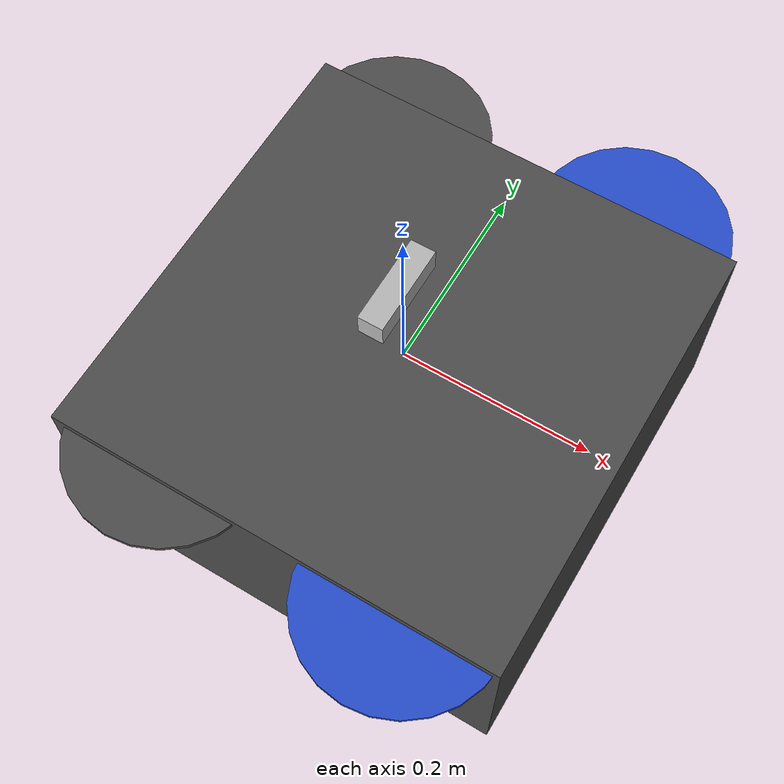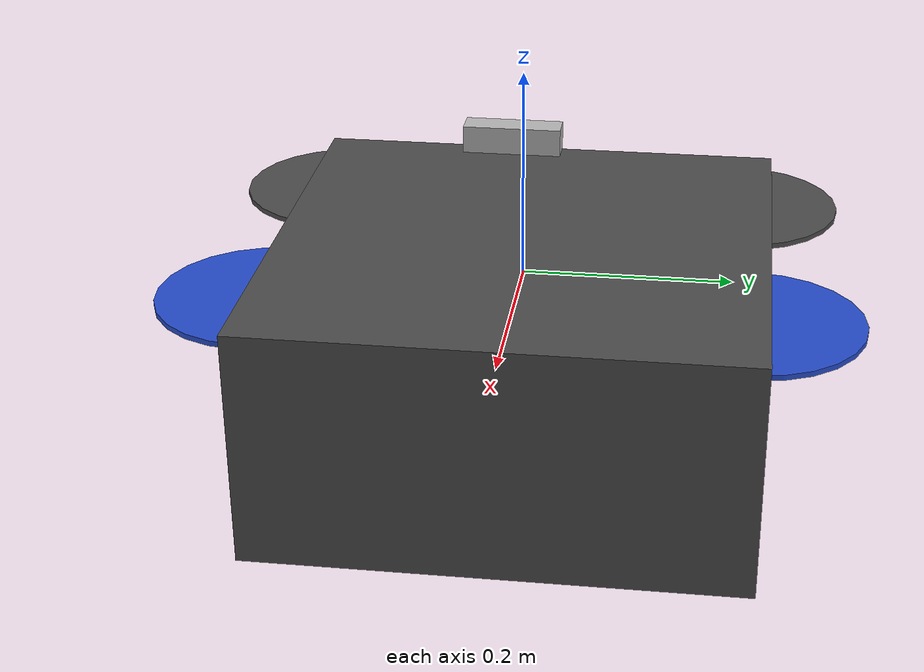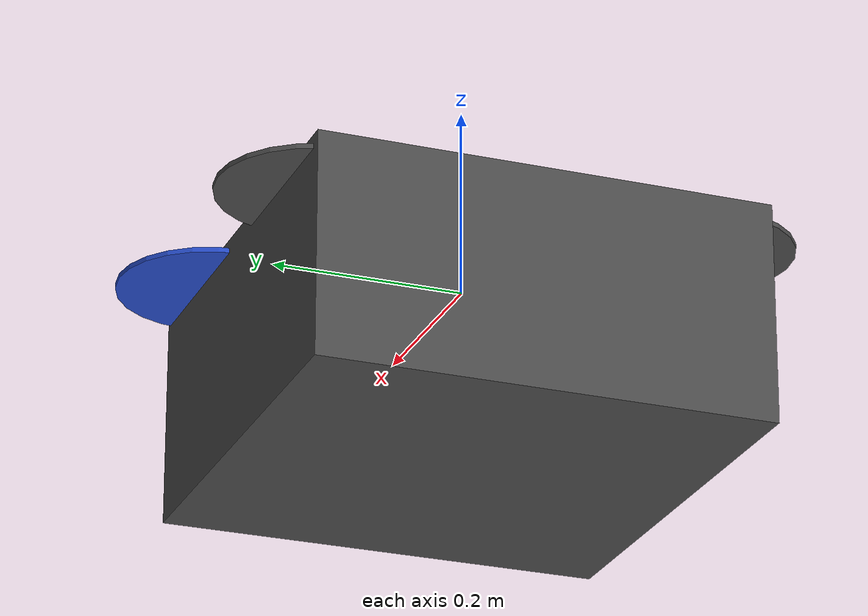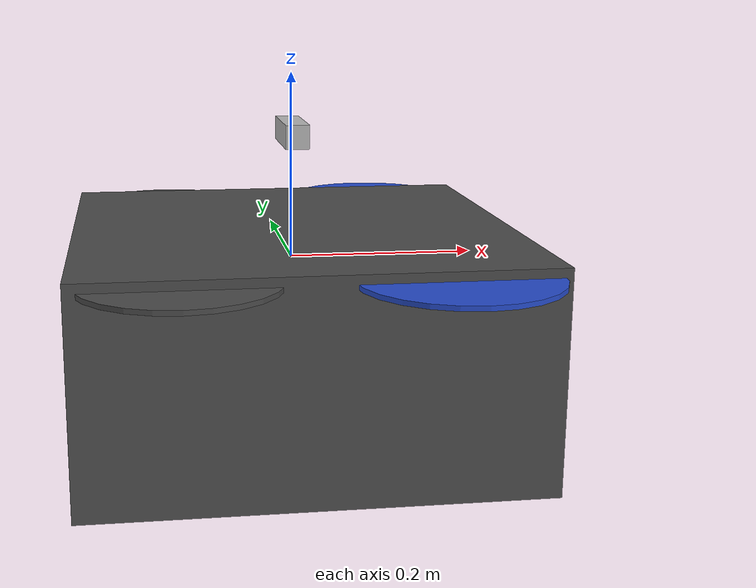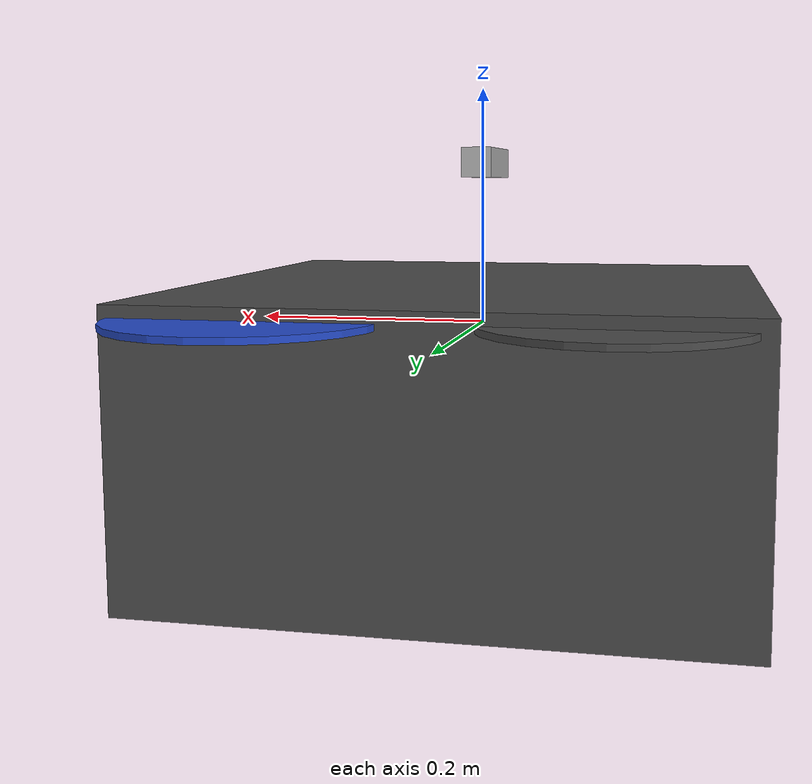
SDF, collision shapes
<?xml version='1.0'?>
<sdf version='1.6'>
  <model name='iris_with_rs'>

    <include>
      <uri>model://realsense_model</uri>
      <pose>0 -0.01 0.125 0 0 0</pose>
    </include>

    <joint name="realsense_joint" type="revolute">
      <parent>base_link</parent>
      <child>realsense2_camera::base_link</child>
      <axis>
        <limit>
          <lower>0</lower>
          <upper>0</upper>
        </limit>
        <xyz>0 0 1</xyz>
        <use_parent_model_frame>true</use_parent_model_frame>
      </axis>
    </joint>

	  <link name='base_link'>
		  <pose> 0 0 0 0 0 0 </pose>
      <velocity_decay>
        <linear>0.0</linear>
        <angular>0.0</angular>
      </velocity_decay>
      <inertial>
	      <pose>0 0 0 0 0 0</pose>
        <mass>1.5</mass>
        <inertia>
          <ixx>0.008</ixx>
          <ixy>0</ixy>
          <ixz>0</ixz>
          <iyy>0.015</iyy>
          <iyz>0</iyz>
          <izz>0.017</izz>
        </inertia>
      </inertial>
      <collision name='base_link_collision'>
        <pose>0 0 -0.08 0 0 0</pose>
        <geometry>
          <box>
            <size>0.47 0.47 0.23</size>
          </box>
        </geometry>
        <surface>
          <contact>
            <ode>
              <max_vel>100.0</max_vel>
              <min_depth>0.001</min_depth>
            </ode>
          </contact>
          <friction>
            <ode>
              <mu>1.0</mu>
              <mu2>1.0</mu2>
            </ode>
          </friction>
        </surface>
      </collision>
      <visual name='base_link_visual'>
        <geometry>
          <mesh>
            <uri>model://iris_with_rs/meshes/iris.dae</uri>
          </mesh>
        </geometry>
        <material>
          <script>
            <name>Gazebo/DarkGrey</name>
            <uri>__default__</uri>
          </script>
        </material>
      </visual>

      <visual name='front_left_leg_visual'>
        <pose>0.123 0.22 -0.11 0 0 0</pose>
        <geometry>
          <cylinder>
            <radius>0.005</radius>
            <length>0.17</length>
          </cylinder>
        </geometry>
        <material>
          <script>
            <name>Gazebo/FlatBlack</name>
            <uri>file://media/materials/scripts/gazebo.material</uri>
          </script>
        </material>
      </visual>
      <visual name='front_right_leg_visual'>
        <pose>0.123 -0.22 -0.11 0 0 0</pose>
        <geometry>
          <cylinder>
            <radius>0.005</radius>
            <length>0.17</length>
          </cylinder>
        </geometry>
        <material>
          <script>
            <name>Gazebo/FlatBlack</name>
            <uri>file://media/materials/scripts/gazebo.material</uri>
          </script>
        </material>
      </visual>
      <visual name='rear_left_leg_visual'>
        <pose>-0.140 0.21 -0.11 0 0 0</pose>
        <geometry>
          <cylinder>
            <radius>0.005</radius>
            <length>0.17</length>
          </cylinder>
        </geometry>
        <material>
          <script>
            <name>Gazebo/FlatBlack</name>
            <uri>file://media/materials/scripts/gazebo.material</uri>
          </script>
        </material>
      </visual>
      <visual name='rear_right_leg_visual'>
        <pose>-0.140 -0.21 -0.11 0 0 0</pose>
        <geometry>
          <cylinder>
            <radius>0.005</radius>
            <length>0.17</length>
          </cylinder>
        </geometry>
        <material>
          <script>
            <name>Gazebo/FlatBlack</name>
            <uri>file://media/materials/scripts/gazebo.material</uri>
          </script>
        </material>
      </visual>
    </link>
    <link name='iris_with_rs/ground_truth/odometry_sensorgt_link'>
      <pose>0 0 0 0 -0 0</pose>
      <inertial>
        <pose>0 0 0 0 -0 0</pose>
        <mass>0.15</mass>
        <inertia>
          <ixx>0.0001</ixx>
          <ixy>0</ixy>
          <ixz>0</ixz>
          <iyy>0.0002</iyy>
          <iyz>0</iyz>
          <izz>0.0002</izz>
        </inertia>
      </inertial>
    </link>
    <joint name='iris_with_rs/ground_truth/odometry_sensorgt_joint' type='revolute'>
      <child>iris_with_rs/ground_truth/odometry_sensorgt_link</child>
      <parent>base_link</parent>
      <axis>
        <xyz>0 0 1</xyz>
        <limit>
          <lower>0</lower>
          <upper>0</upper>
          <effort>0</effort>
          <velocity>0</velocity>
        </limit>
        <dynamics>
          <damping>1.0</damping>
        </dynamics>
        <use_parent_model_frame>1</use_parent_model_frame>
      </axis>
      <physics>
        <ode>
          <implicit_spring_damper>1</implicit_spring_damper>
        </ode>
      </physics>
    </joint>
    <link name='iris_with_rs/imu_link'>
      <inertial>
        <pose>0 0 0 0 0 0</pose>
        <mass>0.15</mass>
        <inertia>
          <ixx>0.00001</ixx>
          <ixy>0</ixy>
          <ixz>0</ixz>
          <iyy>0.00002</iyy>
          <iyz>0</iyz>
          <izz>0.00002</izz>
        </inertia>
      </inertial>
      <sensor name="imu_sensor" type="imu">
        <pose>0 0 0 3.141593 0 0</pose>
        <always_on>1</always_on>
        <update_rate>1000.0</update_rate>
      </sensor>
    </link>
    <joint name='iris_with_rs/imu_joint' type='revolute'>
      <child>iris_with_rs/imu_link</child>
      <parent>base_link</parent>
      <axis>
        <xyz>0 0 1</xyz>
        <limit>
          <lower>0</lower>
          <upper>0</upper>
          <effort>0</effort>
          <velocity>0</velocity>
        </limit>
        <dynamics>
          <damping>1.0</damping>
        </dynamics>
        <use_parent_model_frame>1</use_parent_model_frame>
      </axis>
      <physics>
        <ode>
          <implicit_spring_damper>1</implicit_spring_damper>
        </ode>
      </physics>
    </joint>
    <link name='rotor_0'>
      <pose>0.13 -0.22 0.023 0 -0 0</pose>
      <inertial>
        <pose>0 0 0 0 -0 0</pose>
        <mass>0.025</mass>
        <inertia>
          <ixx>9.75e-06</ixx>
          <ixy>0</ixy>
          <ixz>0</ixz>
          <iyy>0.000166704</iyy>
          <iyz>0</iyz>
          <izz>0.000167604</izz>
        </inertia>
      </inertial>
      <collision name='rotor_0_collision'>
        <pose>0 0 0 0 -0 0</pose>
        <geometry>
          <cylinder>
            <length>0.005</length>
            <radius>0.1</radius>
          </cylinder>
        </geometry>
        <surface>
          <contact>
            <ode/>
          </contact>
          <friction>
            <ode/>
          </friction>
        </surface>
      </collision>
      <visual name='rotor_0_visual'>
        <pose>0 0 0 0 -0 0</pose>
        <geometry>
          <mesh>
            <scale>1 1 1</scale>
            <uri>model://iris_with_rs/meshes/iris_prop_ccw.dae</uri>
          </mesh>
        </geometry>
        <material>
          <script>
            <name>Gazebo/Blue</name>
            <uri>__default__</uri>
          </script>
        </material>
      </visual>
      <gravity>1</gravity>
      <velocity_decay/>
      <self_collide>0</self_collide>
    </link>
    <joint name='rotor_0_joint' type='revolute'>
      <child>rotor_0</child>
      <parent>base_link</parent>
      <axis>
        <xyz>0 0 1</xyz>
        <limit>
          <lower>-1e+16</lower>
          <upper>1e+16</upper>
        </limit>
        <dynamics>
          <damping>0.004</damping>
        </dynamics>
        <use_parent_model_frame>1</use_parent_model_frame>
      </axis>
      <physics>
        <ode>
          <implicit_spring_damper>1</implicit_spring_damper>
        </ode>
      </physics>
    </joint>
    <link name='rotor_1'>
      <pose>-0.13 0.2 0.023 0 -0 0</pose>
      <inertial>
        <pose>0 0 0 0 -0 0</pose>
        <mass>0.025</mass>
        <inertia>
          <ixx>9.75e-06</ixx>
          <ixy>0</ixy>
          <ixz>0</ixz>
          <iyy>0.000166704</iyy>
          <iyz>0</iyz>
          <izz>0.000167604</izz>
        </inertia>
      </inertial>
      <collision name='rotor_1_collision'>
        <pose>0 0 0 0 -0 0</pose>
        <geometry>
          <cylinder>
            <length>0.005</length>
            <radius>0.1</radius>
          </cylinder>
        </geometry>
        <surface>
          <contact>
            <ode/>
          </contact>
          <friction>
            <ode/>
          </friction>
        </surface>
      </collision>
      <visual name='rotor_1_visual'>
        <pose>0 0 0 0 -0 0</pose>
        <geometry>
          <mesh>
            <scale>1 1 1</scale>
            <uri>model://iris_with_rs/meshes/iris_prop_ccw.dae</uri>
          </mesh>
        </geometry>
        <material>
          <script>
            <name>Gazebo/DarkGrey</name>
            <uri>__default__</uri>
          </script>
        </material>
      </visual>
      <gravity>1</gravity>
      <velocity_decay/>
      <self_collide>0</self_collide>
    </link>
    <joint name='rotor_1_joint' type='revolute'>
      <child>rotor_1</child>
      <parent>base_link</parent>
      <axis>
        <xyz>0 0 1</xyz>
        <limit>
          <lower>-1e+16</lower>
          <upper>1e+16</upper>
        </limit>
        <dynamics>
          <damping>0.004</damping>
        </dynamics>
        <use_parent_model_frame>1</use_parent_model_frame>
      </axis>
      <physics>
        <ode>
          <implicit_spring_damper>1</implicit_spring_damper>
        </ode>
      </physics>
    </joint>
    <link name='rotor_2'>
      <pose>0.13 0.22 0.023 0 -0 0</pose>
      <inertial>
        <pose>0 0 0 0 -0 0</pose>
        <mass>0.025</mass>
        <inertia>
          <ixx>9.75e-06</ixx>
          <ixy>0</ixy>
          <ixz>0</ixz>
          <iyy>0.000166704</iyy>
          <iyz>0</iyz>
          <izz>0.000167604</izz>
        </inertia>
      </inertial>
      <collision name='rotor_2_collision'>
        <pose>0 0 0 0 -0 0</pose>
        <geometry>
          <cylinder>
            <length>0.005</length>
            <radius>0.1</radius>
          </cylinder>
        </geometry>
        <surface>
          <contact>
            <ode/>
          </contact>
          <friction>
            <ode/>
          </friction>
        </surface>
      </collision>
      <visual name='rotor_2_visual'>
        <pose>0 0 0 0 -0 0</pose>
        <geometry>
          <mesh>
            <scale>1 1 1</scale>
            <uri>model://iris_with_rs/meshes/iris_prop_cw.dae</uri>
          </mesh>
        </geometry>
        <material>
          <script>
            <name>Gazebo/Blue</name>
            <uri>__default__</uri>
          </script>
        </material>
      </visual>
      <gravity>1</gravity>
      <velocity_decay/>
      <self_collide>0</self_collide>
    </link>
    <joint name='rotor_2_joint' type='revolute'>
      <child>rotor_2</child>
      <parent>base_link</parent>
      <axis>
        <xyz>0 0 1</xyz>
        <limit>
          <lower>-1e+16</lower>
          <upper>1e+16</upper>
        </limit>
        <dynamics>
          <damping>0.004</damping>
        </dynamics>
        <use_parent_model_frame>1</use_parent_model_frame>
      </axis>
      <physics>
        <ode>
          <implicit_spring_damper>1</implicit_spring_damper>
        </ode>
      </physics>
    </joint>
    <link name='rotor_3'>
      <pose>-0.13 -0.2 0.023 0 -0 0</pose>
      <inertial>
        <pose>0 0 0 0 -0 0</pose>
        <mass>0.025</mass>
        <inertia>
          <ixx>9.75e-06</ixx>
          <ixy>0</ixy>
          <ixz>0</ixz>
          <iyy>0.000166704</iyy>
          <iyz>0</iyz>
          <izz>0.000167604</izz>
        </inertia>
      </inertial>
      <collision name='rotor_3_collision'>
        <pose>0 0 0 0 -0 0</pose>
        <geometry>
          <cylinder>
            <length>0.005</length>
            <radius>0.1</radius>
          </cylinder>
        </geometry>
        <surface>
          <contact>
            <ode/>
          </contact>
          <friction>
            <ode/>
          </friction>
        </surface>
      </collision>
      <visual name='rotor_3_visual'>
        <pose>0 0 0 0 -0 0</pose>
        <geometry>
          <mesh>
            <scale>1 1 1</scale>
            <uri>model://iris_with_rs/meshes/iris_prop_cw.dae</uri>
          </mesh>
        </geometry>
        <material>
          <script>
            <name>Gazebo/DarkGrey</name>
            <uri>__default__</uri>
          </script>
        </material>
      </visual>
      <gravity>1</gravity>
      <velocity_decay/>
      <self_collide>0</self_collide>
    </link>
    <joint name='rotor_3_joint' type='revolute'>
      <child>rotor_3</child>
      <parent>base_link</parent>
      <axis>
        <xyz>0 0 1</xyz>
        <limit>
          <lower>-1e+16</lower>
          <upper>1e+16</upper>
        </limit>
        <dynamics>
          <damping>0.004</damping>
        </dynamics>
        <use_parent_model_frame>1</use_parent_model_frame>
      </axis>
      <physics>
        <ode>
          <implicit_spring_damper>1</implicit_spring_damper>
        </ode>
      </physics>
    </joint>
    <static>0</static>

    <!-- plugins -->
    <plugin name="iris_controller" filename="libgazebo_ros_p3d.so">
      <alwaysOn>true</alwaysOn>
      <updateRate>100.0</updateRate>
      <bodyName>iris_with_rs::base_link</bodyName>
      <topicName>iris_ground_truth</topicName>
      <gaussianNoise>0.0</gaussianNoise>
      <frameName>world</frameName>
      <xyzOffsets>0 0 0</xyzOffsets>
      <rpyOffsets>0 0 0</rpyOffsets>
    </plugin>
    <plugin name="rotor_0_blade_1" filename="libLiftDragPlugin.so">
      <a0>0.3</a0>
      <alpha_stall>1.4</alpha_stall>
      <cla>4.2500</cla>
      <cda>0.10</cda>
      <cma>0.00</cma>
      <cla_stall>-0.025</cla_stall>
      <cda_stall>0.0</cda_stall>
      <cma_stall>0.0</cma_stall>
      <area>0.002</area>
      <air_density>1.2041</air_density>
      <cp>0.084 0 0</cp>
      <forward>0 1 0</forward>
      <upward>0 0 1</upward>
      <link_name>iris_with_rs::rotor_0</link_name>
    </plugin>
    <plugin name="rotor_0_blade_2" filename="libLiftDragPlugin.so">
      <a0>0.3</a0>
      <alpha_stall>1.4</alpha_stall>
      <cla>4.2500</cla>
      <cda>0.10</cda>
      <cma>0.00</cma>
      <cla_stall>-0.025</cla_stall>
      <cda_stall>0.0</cda_stall>
      <cma_stall>0.0</cma_stall>
      <area>0.002</area>
      <air_density>1.2041</air_density>
      <cp>-0.084 0 0</cp>
      <forward>0 -1 0</forward>
      <upward>0 0 1</upward>
      <link_name>iris_with_rs::rotor_0</link_name>
    </plugin>

    <plugin name="rotor_1_blade_1" filename="libLiftDragPlugin.so">
      <a0>0.3</a0>
      <alpha_stall>1.4</alpha_stall>
      <cla>4.2500</cla>
      <cda>0.10</cda>
      <cma>0.00</cma>
      <cla_stall>-0.025</cla_stall>
      <cda_stall>0.0</cda_stall>
      <cma_stall>0.0</cma_stall>
      <area>0.002</area>
      <air_density>1.2041</air_density>
      <cp>0.084 0 0</cp>
      <forward>0 1 0</forward>
      <upward>0 0 1</upward>
      <link_name>iris_with_rs::rotor_1</link_name>
    </plugin>
    <plugin name="rotor_1_blade_2" filename="libLiftDragPlugin.so">
      <a0>0.3</a0>
      <alpha_stall>1.4</alpha_stall>
      <cla>4.2500</cla>
      <cda>0.10</cda>
      <cma>0.00</cma>
      <cla_stall>-0.025</cla_stall>
      <cda_stall>0.0</cda_stall>
      <cma_stall>0.0</cma_stall>
      <area>0.002</area>
      <air_density>1.2041</air_density>
      <cp>-0.084 0 0</cp>
      <forward>0 -1 0</forward>
      <upward>0 0 1</upward>
      <link_name>iris_with_rs::rotor_1</link_name>
    </plugin>

    <plugin name="rotor_2_blade_1" filename="libLiftDragPlugin.so">
      <a0>0.3</a0>
      <alpha_stall>1.4</alpha_stall>
      <cla>4.2500</cla>
      <cda>0.10</cda>
      <cma>0.00</cma>
      <cla_stall>-0.025</cla_stall>
      <cda_stall>0.0</cda_stall>
      <cma_stall>0.0</cma_stall>
      <area>0.002</area>
      <air_density>1.2041</air_density>
      <cp>0.084 0 0</cp>
      <forward>0 -1 0</forward>
      <upward>0 0 1</upward>
      <link_name>iris_with_rs::rotor_2</link_name>
    </plugin>
    <plugin name="rotor_2_blade_2" filename="libLiftDragPlugin.so">
      <a0>0.3</a0>
      <alpha_stall>1.4</alpha_stall>
      <cla>4.2500</cla>
      <cda>0.10</cda>
      <cma>0.00</cma>
      <cla_stall>-0.025</cla_stall>
      <cda_stall>0.0</cda_stall>
      <cma_stall>0.0</cma_stall>
      <area>0.002</area>
      <air_density>1.2041</air_density>
      <cp>-0.084 0 0</cp>
      <forward>0 1 0</forward>
      <upward>0 0 1</upward>
      <link_name>iris_with_rs::rotor_2</link_name>
    </plugin>

    <plugin name="rotor_3_blade_1" filename="libLiftDragPlugin.so">
      <a0>0.3</a0>
      <alpha_stall>1.4</alpha_stall>
      <cla>4.2500</cla>
      <cda>0.10</cda>
      <cma>0.00</cma>
      <cla_stall>-0.025</cla_stall>
      <cda_stall>0.0</cda_stall>
      <cma_stall>0.0</cma_stall>
      <area>0.002</area>
      <air_density>1.2041</air_density>
      <cp>0.084 0 0</cp>
      <forward>0 -1 0</forward>
      <upward>0 0 1</upward>
      <link_name>iris_with_rs::rotor_3</link_name>
    </plugin>
    <plugin name="rotor_3_blade_2" filename="libLiftDragPlugin.so">
      <a0>0.3</a0>
      <alpha_stall>1.4</alpha_stall>
      <cla>4.2500</cla>
      <cda>0.10</cda>
      <cma>0.00</cma>
      <cla_stall>-0.025</cla_stall>
      <cda_stall>0.0</cda_stall>
      <cma_stall>0.0</cma_stall>
      <area>0.002</area>
      <air_density>1.2041</air_density>
      <cp>-0.084 0 0</cp>
      <forward>0 1 0</forward>
      <upward>0 0 1</upward>
      <link_name>iris_with_rs::rotor_3</link_name>
    </plugin>
    <plugin name="arducopter_plugin" filename="libArduPilotPlugin.so">
      <fdm_addr>127.0.0.1</fdm_addr>
      <fdm_port_in>9002</fdm_port_in>
      <fdm_port_out>9003</fdm_port_out>
      <!--
          Require by APM :
          Only change model and gazebo from XYZ to XY-Z coordinates
      -->
      <modelXYZToAirplaneXForwardZDown>0 0 0 3.141593 0 0</modelXYZToAirplaneXForwardZDown>
      <gazeboXYZToNED>0 0 0 3.141593 0 0</gazeboXYZToNED>
      <imuName>iris_with_rs/imu_link::imu_sensor</imuName>
      <connectionTimeoutMaxCount>5</connectionTimeoutMaxCount>
      <control channel="0">
        <type>VELOCITY</type>
        <offset>0</offset>
        <p_gain>0.20</p_gain>
        <i_gain>0</i_gain>
        <d_gain>0</d_gain>
        <i_max>0</i_max>
        <i_min>0</i_min>
        <cmd_max>2.5</cmd_max>
        <cmd_min>-2.5</cmd_min>
        <jointName>iris_with_rs::rotor_0_joint</jointName>
        <multiplier>838</multiplier>
        <controlVelocitySlowdownSim>1</controlVelocitySlowdownSim>
      </control>
      <control channel="1">
        <type>VELOCITY</type>
        <offset>0</offset>
        <p_gain>0.20</p_gain>
        <i_gain>0</i_gain>
        <d_gain>0</d_gain>
        <i_max>0</i_max>
        <i_min>0</i_min>
        <cmd_max>2.5</cmd_max>
        <cmd_min>-2.5</cmd_min>
        <jointName>iris_with_rs::rotor_1_joint</jointName>
        <multiplier>838</multiplier>
        <controlVelocitySlowdownSim>1</controlVelocitySlowdownSim>
      </control>
      <control channel="2">
        <type>VELOCITY</type>
        <offset>0</offset>
        <p_gain>0.20</p_gain>
        <i_gain>0</i_gain>
        <d_gain>0</d_gain>
        <i_max>0</i_max>
        <i_min>0</i_min>
        <cmd_max>2.5</cmd_max>
        <cmd_min>-2.5</cmd_min>
        <jointName>iris_with_rs::rotor_2_joint</jointName>
        <multiplier>-838</multiplier>
        <controlVelocitySlowdownSim>1</controlVelocitySlowdownSim>
      </control>
      <control channel="3">
        <type>VELOCITY</type>
        <offset>0</offset>
        <p_gain>0.20</p_gain>
        <i_gain>0</i_gain>
        <d_gain>0</d_gain>
        <i_max>0</i_max>
        <i_min>0</i_min>
        <cmd_max>2.5</cmd_max>
        <cmd_min>-2.5</cmd_min>
        <jointName>iris_with_rs::rotor_3_joint</jointName>
        <multiplier>-838</multiplier>
        <controlVelocitySlowdownSim>1</controlVelocitySlowdownSim>
      </control>
    </plugin>
  </model>
</sdf>

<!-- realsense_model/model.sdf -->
<sdf version='1.6'>
  <model name='realsense2_camera'>
    <link name='base_link'>
   <pose frame=''>0 0 0 0 0 0</pose>
      <inertial>
        <pose frame=''>0 0.0175 0.0125 0 -0 0</pose>
        <mass>0.05</mass>
        <inertia>
          <ixx>0.00388124</ixx>
          <ixy>0</ixy>
          <ixz>0</ixz>
          <iyy>0.00049894</iyy>
          <iyz>0</iyz>
          <izz>0.00387926</izz>
        </inertia>
      </inertial>
      <collision name='base_link_fixed_joint_lump__camera_link_collision'>
        <pose frame=''>0 0 0.0125 0 -0 0</pose>
        <geometry>
          <box>
            <size>0.02505 0.09 0.025</size>
          </box>
        </geometry>
        <surface>
          <contact>
            <ode>
              <kp>1e+13</kp>
              <kd>1</kd>
            </ode>
          </contact>
          <friction>
            <ode>
              <mu2>1</mu2>
              <fdir1>0 0 0</fdir1>
            </ode>
          </friction>
        </surface>
      </collision>
      <visual name='base_link_fixed_joint_lump__camera_link_visual'>
        <pose frame=''>0.0149 0 0.0125 1.5708 -0 1.5708</pose>
        <geometry>
          <mesh>
            <scale>1 1 1</scale>
            <uri>model://realsense_model/meshes/d435.dae</uri>
          </mesh>
        </geometry>
        <material>
          <script>
            <uri>__default__</uri>
            <name>__default__</name>
          </script>
        </material>
      </visual>
      <gravity>1</gravity>
      <velocity_decay/>
      <self_collide>0</self_collide>
      <enable_wind>0</enable_wind>
      <kinematic>0</kinematic>
      <gravity>1</gravity>
      <sensor name='cameracolor' type='camera'>
        <camera name='camera'>
          <horizontal_fov>1.21126</horizontal_fov>
          <image>
            <width>192</width>
            <height>108</height>
            <format>RGB_INT8</format>
          </image>
          <clip>
            <near>0.1</near>
            <far>100</far>
          </clip>
          <noise>
            <type>gaussian</type>
            <mean>0</mean>
            <stddev>0.007</stddev>
          </noise>
        </camera>
        <always_on>1</always_on>
        <update_rate>30</update_rate>
        <visualize>1</visualize>
        <pose frame=''>0 0.0175 0.0125 0 -0 0</pose>
      </sensor>
      <sensor name='cameraired1' type='camera'>
        <camera name='camera'>
          <horizontal_fov>1.48702</horizontal_fov>
          <image>
            <width>640</width>
            <height>480</height>
            <format>L_INT8</format>
          </image>
          <clip>
            <near>0.1</near>
            <far>100</far>
          </clip>
          <noise>
            <type>gaussian</type>
            <mean>0</mean>
            <stddev>0.005</stddev>
          </noise>
        </camera>
        <always_on>1</always_on>
        <update_rate>30</update_rate>
        <visualize>0</visualize>
        <pose frame=''>0 -0.025 0.0125 0 -0 0</pose>
      </sensor>
      <sensor name='cameraired2' type='camera'>
        <camera name='camera'>
          <horizontal_fov>1.48702</horizontal_fov>
          <image>
            <width>640</width>
            <height>480</height>
            <format>L_INT8</format>
          </image>
          <clip>
            <near>0.1</near>
            <far>100</far>
          </clip>
          <noise>
            <type>gaussian</type>
            <mean>0</mean>
            <stddev>0.005</stddev>
          </noise>
        </camera>
        <always_on>1</always_on>
        <update_rate>30</update_rate>
        <visualize>0</visualize>
        <pose frame=''>0 0.025 0.0125 0 -0 0</pose>
      </sensor>
      <sensor name='cameradepth' type='depth'>
	<camera name='camera'>
	<horizontal_fov>1.48702</horizontal_fov>
          <image>
            <width>640</width>
	    <height>480</height>
          </image>
          <clip>
            <near>0.1</near>
            <far>100</far>
          </clip>
          <noise>
            <type>gaussian</type>
            <mean>0</mean>
            <stddev>0.1</stddev>
          </noise>
        </camera>
        <always_on>1</always_on>
        <update_rate>30</update_rate>
        <visualize>0</visualize>
        <pose frame=''>0 0.0175 0.0125 0 -0 0</pose>
    </sensor>
    <sensor name="imu_sensor" type="imu">
	    <always_on>true</always_on>
	    <update_rate>100</update_rate>
	    <visualize>true</visualize>
	    <topic>__default_topic__</topic>
	    <plugin filename="libgazebo_ros_imu_sensor.so" name="imu_plugin">
		    <topicName>imu</topicName>
		    <bodyName>imu_link</bodyName>
		    <updateRateHZ>100.0</updateRateHZ>
		    <gaussianNoise>0.0</gaussianNoise>
		    <xyzOffset>0 0 0</xyzOffset>
		    <rpyOffset>0 0 0</rpyOffset>
		    <frameName>imu_link</frameName>
		    <initialOrientationAsReference>false</initialOrientationAsReference>
	    </plugin>
    </sensor>
    </link>
    <static>0</static>
    <plugin name='camera' filename='librealsense_gazebo_plugin.so'>
	    <prefix>camera</prefix>
      <depthUpdateRate>30.0</depthUpdateRate>
      <colorUpdateRate>30.0</colorUpdateRate>
      <infraredUpdateRate>30.0</infraredUpdateRate>
      <depthTopicName>depth/image_raw</depthTopicName>
      <depthCameraInfoTopicName>depth/camera_info</depthCameraInfoTopicName>
      <colorTopicName>color/image_raw</colorTopicName>
      <colorCameraInfoTopicName>color/camera_info</colorCameraInfoTopicName>
      <infrared1TopicName>infra1/image_raw</infrared1TopicName>
      <infrared1CameraInfoTopicName>infra1/camera_info</infrared1CameraInfoTopicName>
      <infrared2TopicName>infra2/image_raw</infrared2TopicName>
      <infrared2CameraInfoTopicName>infra2/camera_info</infrared2CameraInfoTopicName>
      <colorOpticalframeName>camera_color_optical_frame</colorOpticalframeName>
      <depthOpticalframeName>camera_depth_optical_frame</depthOpticalframeName>
      <infrared1OpticalframeName>camera_left_ir_optical_frame</infrared1OpticalframeName>
      <infrared2OpticalframeName>camera_right_ir_optical_frame</infrared2OpticalframeName>
      <rangeMinDepth>0.2</rangeMinDepth>
      <rangeMaxDepth>10.0</rangeMaxDepth>
      <pointCloud>1</pointCloud>
      <pointCloudTopicName>depth/points</pointCloudTopicName>
      <pointCloudCutoff>0.5</pointCloudCutoff>
    </plugin>

  </model>
 </sdf>
